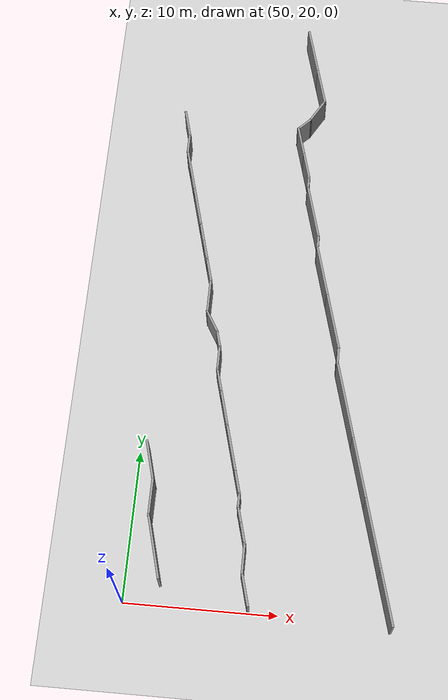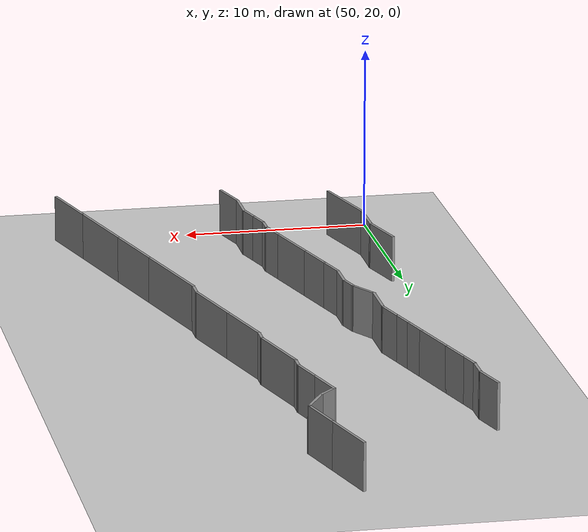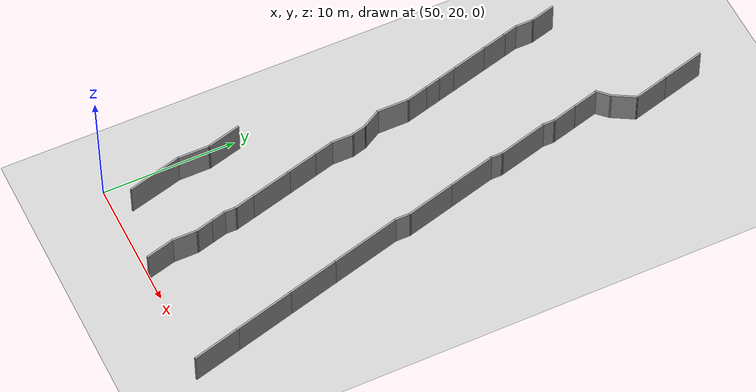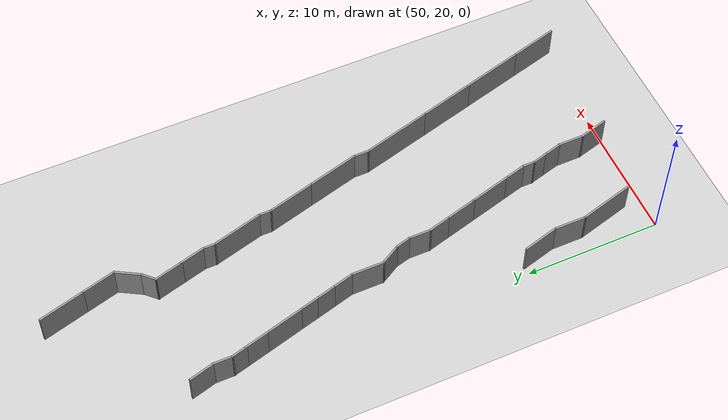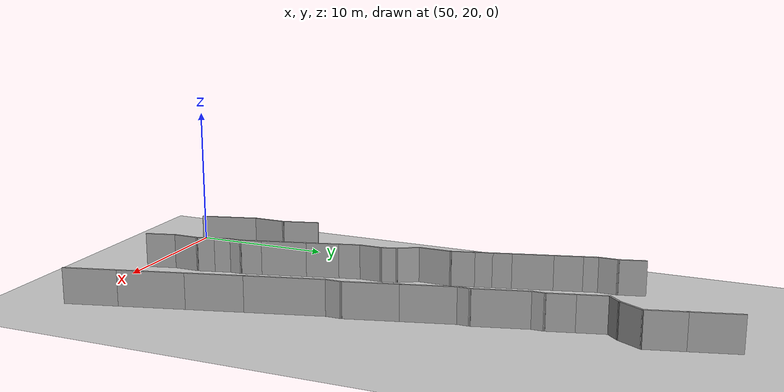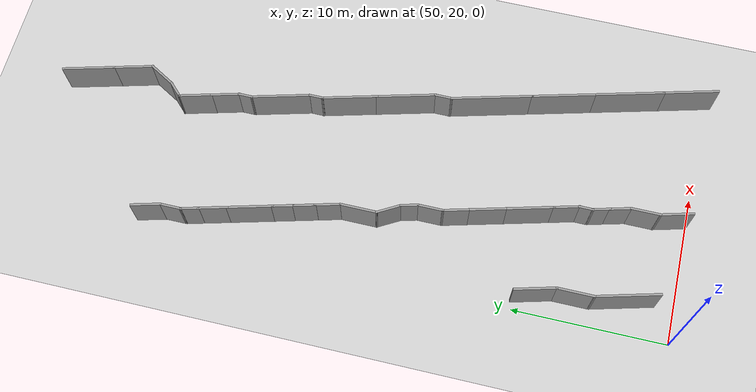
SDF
<sdf version="1.7">
 <world name="default">
  <model name="ground_plane">
   <static>1</static>
   <link name="link">
    <collision name="collision">
     <geometry><plane><normal>0 0 1</normal><size>500 500</size></plane></geometry>
     <surface><friction><ode><mu>100</mu><mu2>50</mu2></ode></friction></surface>
    </collision>
    <visual name="visual">
     <cast_shadows>0</cast_shadows>
     <geometry><plane><normal>0 0 1</normal><size>500 500</size></plane></geometry>
     <material>
      <script><uri>file://media/materials/scripts/gazebo.material</uri><name>Gazebo/Grey</name></script>
     </material>
    </visual>
   </link>
  </model>
  <model name="out_door1">
   <pose>25.5832 12.3476 0 0 -0 0</pose>
   <link name="Wall_141">
    <collision name="Wall_141_Collision">
     <geometry><box><size>3.75 0.15 2.5</size></box></geometry>
     <pose>0 0 1.25 0 -0 0</pose>
    </collision>
    <visual name="Wall_141_Visual">
     <pose>0 0 1.25 0 -0 0</pose>
     <geometry><box><size>3.75 0.15 2.5</size></box></geometry>
     <material>
      <script><uri>file://media/materials/scripts/gazebo.material</uri><name>Gazebo/Grey</name></script>
      <ambient>1 1 1 1</ambient>
     </material>
     <meta><layer>0</layer></meta>
    </visual>
    <pose>41.0779 8.96221 0 0 -0 1.8326</pose>
   </link>
   <link name="Wall_142">
    <collision name="Wall_142_Collision">
     <geometry><box><size>4.75 0.15 2.5</size></box></geometry>
     <pose>0 0 1.25 0 -0 0</pose>
    </collision>
    <visual name="Wall_142_Visual">
     <pose>0 0 1.25 0 -0 0</pose>
     <geometry><box><size>4.75 0.15 2.5</size></box></geometry>
     <material>
      <script><uri>file://media/materials/scripts/gazebo.material</uri><name>Gazebo/Grey</name></script>
      <ambient>1 1 1 1</ambient>
     </material>
     <meta><layer>0</layer></meta>
    </visual>
    <pose>40.0167 12.9225 0 0 -0 1.8326</pose>
   </link>
   <link name="Wall_143">
    <collision name="Wall_143_Collision">
     <geometry><box><size>4.25 0.15 2.5</size></box></geometry>
     <pose>0 0 1.25 0 -0 0</pose>
    </collision>
    <visual name="Wall_143_Visual">
     <pose>0 0 1.25 0 -0 0</pose>
     <geometry><box><size>4.25 0.15 2.5</size></box></geometry>
     <material>
      <script><uri>file://media/materials/scripts/gazebo.material</uri><name>Gazebo/Grey</name></script>
      <ambient>1 1 1 1</ambient>
     </material>
     <meta><layer>0</layer></meta>
    </visual>
    <pose>38.8908 17.1243 0 0 -0 1.8326</pose>
   </link>
   <link name="Wall_145">
    <collision name="Wall_145_Collision">
     <geometry><box><size>5.5 0.15 2.5</size></box></geometry>
     <pose>0 0 1.25 0 -0 0</pose>
    </collision>
    <visual name="Wall_145_Visual">
     <pose>0 0 1.25 0 -0 0</pose>
     <geometry><box><size>5.5 0.15 2.5</size></box></geometry>
     <material>
      <script><uri>file://media/materials/scripts/gazebo.material</uri><name>Gazebo/Grey</name></script>
      <ambient>1 1 1 1</ambient>
     </material>
     <meta><layer>0</layer></meta>
    </visual>
    <pose>37.6679 21.6883 0 0 -0 1.8326</pose>
   </link>
   <link name="Wall_146">
    <collision name="Wall_146_Collision">
     <geometry><box><size>1.25 0.15 2.5</size></box></geometry>
     <pose>0 0 1.25 0 -0 0</pose>
    </collision>
    <visual name="Wall_146_Visual">
     <pose>0 0 1.25 0 -0 0</pose>
     <geometry><box><size>1.25 0.15 2.5</size></box></geometry>
     <material>
      <script><uri>file://media/materials/scripts/gazebo.material</uri><name>Gazebo/Grey</name></script>
      <ambient>1 1 1 1</ambient>
     </material>
     <meta><layer>0</layer></meta>
    </visual>
    <pose>36.9756 24.8221 0 0 -0 1.5708</pose>
   </link>
   <link name="Wall_147">
    <collision name="Wall_147_Collision">
     <geometry><box><size>4 0.15 2.5</size></box></geometry>
     <pose>0 0 1.25 0 -0 0</pose>
    </collision>
    <visual name="Wall_147_Visual">
     <pose>0 0 1.25 0 -0 0</pose>
     <geometry><box><size>4 0.15 2.5</size></box></geometry>
     <material>
      <script><uri>file://media/materials/scripts/gazebo.material</uri><name>Gazebo/Grey</name></script>
      <ambient>1 1 1 1</ambient>
     </material>
     <meta><layer>0</layer></meta>
    </visual>
    <pose>36.4773 27.2315 0 0 -0 1.8326</pose>
   </link>
   <link name="Wall_148">
    <collision name="Wall_148_Collision">
     <geometry><box><size>3.75 0.15 2.5</size></box></geometry>
     <pose>0 0 1.25 0 -0 0</pose>
    </collision>
    <visual name="Wall_148_Visual">
     <pose>0 0 1.25 0 -0 0</pose>
     <geometry><box><size>3.75 0.15 2.5</size></box></geometry>
     <material>
      <script><uri>file://media/materials/scripts/gazebo.material</uri><name>Gazebo/Grey</name></script>
      <ambient>1 1 1 1</ambient>
     </material>
     <meta><layer>0</layer></meta>
    </visual>
    <pose>35.5132 30.8296 0 0 -0 1.8326</pose>
   </link>
   <link name="Wall_149">
    <collision name="Wall_149_Collision">
     <geometry><box><size>1 0.15 2.5</size></box></geometry>
     <pose>0 0 1.25 0 -0 0</pose>
    </collision>
    <visual name="Wall_149_Visual">
     <pose>0 0 1.25 0 -0 0</pose>
     <geometry><box><size>1 0.15 2.5</size></box></geometry>
     <material>
      <script><uri>file://media/materials/scripts/gazebo.material</uri><name>Gazebo/Grey</name></script>
      <ambient>1 1 1 1</ambient>
     </material>
     <meta><layer>0</layer></meta>
    </visual>
    <pose>35.0474 32.9933 0 0 -0 1.5708</pose>
   </link>
   <link name="Wall_150">
    <collision name="Wall_150_Collision">
     <geometry><box><size>4 0.15 2.5</size></box></geometry>
     <pose>0 0 1.25 0 -0 0</pose>
    </collision>
    <visual name="Wall_150_Visual">
     <pose>0 0 1.25 0 -0 0</pose>
     <geometry><box><size>4 0.15 2.5</size></box></geometry>
     <material>
      <script><uri>file://media/materials/scripts/gazebo.material</uri><name>Gazebo/Grey</name></script>
      <ambient>1 1 1 1</ambient>
     </material>
     <meta><layer>0</layer></meta>
    </visual>
    <pose>34.5491 35.2777 0 0 -0 1.8326</pose>
   </link>
   <link name="Wall_152">
    <collision name="Wall_152_Collision">
     <geometry><box><size>1 0.15 2.5</size></box></geometry>
     <pose>0 0 1.25 0 -0 0</pose>
    </collision>
    <visual name="Wall_152_Visual">
     <pose>0 0 1.25 0 -0 0</pose>
     <geometry><box><size>1 0.15 2.5</size></box></geometry>
     <material>
      <script><uri>file://media/materials/scripts/gazebo.material</uri><name>Gazebo/Grey</name></script>
      <ambient>1 1 1 1</ambient>
     </material>
     <meta><layer>0</layer></meta>
    </visual>
    <pose>34.0509 37.5621 0 0 -0 1.5708</pose>
   </link>
   <link name="Wall_153">
    <collision name="Wall_153_Collision">
     <geometry><box><size>2 0.15 2.5</size></box></geometry>
     <pose>0 0 1.25 0 -0 0</pose>
    </collision>
    <visual name="Wall_153_Visual">
     <pose>0 0 1.25 0 -0 0</pose>
     <geometry><box><size>2 0.15 2.5</size></box></geometry>
     <material>
      <script><uri>file://media/materials/scripts/gazebo.material</uri><name>Gazebo/Grey</name></script>
      <ambient>1 1 1 1</ambient>
     </material>
     <meta><layer>0</layer></meta>
    </visual>
    <pose>33.8115 38.8806 0 0 -0 1.8326</pose>
   </link>
   <link name="Wall_154">
    <collision name="Wall_154_Collision">
     <geometry><box><size>2.25 0.15 2.5</size></box></geometry>
     <pose>0 0 1.25 0 -0 0</pose>
    </collision>
    <visual name="Wall_154_Visual">
     <pose>0 0 1.25 0 -0 0</pose>
     <geometry><box><size>2.25 0.15 2.5</size></box></geometry>
     <material>
      <script><uri>file://media/materials/scripts/gazebo.material</uri><name>Gazebo/Grey</name></script>
      <ambient>1 1 1 1</ambient>
     </material>
     <meta><layer>0</layer></meta>
    </visual>
    <pose>33.3003 40.7883 0 0 -0 1.8326</pose>
   </link>
   <link name="Wall_155">
    <collision name="Wall_155_Collision">
     <geometry><box><size>1.25 0.15 2.5</size></box></geometry>
     <pose>0 0 1.25 0 -0 0</pose>
    </collision>
    <visual name="Wall_155_Visual">
     <pose>0 0 1.25 0 -0 0</pose>
     <geometry><box><size>1.25 0.15 2.5</size></box></geometry>
     <material>
      <script><uri>file://media/materials/scripts/gazebo.material</uri><name>Gazebo/Grey</name></script>
      <ambient>1 1 1 1</ambient>
     </material>
     <meta><layer>0</layer></meta>
    </visual>
    <pose>33.4175 42.1914 0 0 -0 0.785398</pose>
   </link>
   <link name="Wall_156">
    <collision name="Wall_156_Collision">
     <geometry><box><size>2 0.15 2.5</size></box></geometry>
     <pose>0 0 1.25 0 -0 0</pose>
    </collision>
    <visual name="Wall_156_Visual">
     <pose>0 0 1.25 0 -0 0</pose>
     <geometry><box><size>2 0.15 2.5</size></box></geometry>
     <material>
      <script><uri>file://media/materials/scripts/gazebo.material</uri><name>Gazebo/Grey</name></script>
      <ambient>1 1 1 1</ambient>
     </material>
     <meta><layer>0</layer></meta>
    </visual>
    <pose>34.2689 43.3814 0 0 -0 1.0472</pose>
   </link>
   <link name="Wall_157">
    <collision name="Wall_157_Collision">
     <geometry><box><size>2.75 0.15 2.5</size></box></geometry>
     <pose>0 0 1.25 0 -0 0</pose>
    </collision>
    <visual name="Wall_157_Visual">
     <pose>0 0 1.25 0 -0 0</pose>
     <geometry><box><size>2.75 0.15 2.5</size></box></geometry>
     <material>
      <script><uri>file://media/materials/scripts/gazebo.material</uri><name>Gazebo/Grey</name></script>
      <ambient>1 1 1 1</ambient>
     </material>
     <meta><layer>0</layer></meta>
    </visual>
    <pose>34.3949 45.4382 0 0 -0 1.8326</pose>
   </link>
   <link name="Wall_158">
    <collision name="Wall_158_Collision">
     <geometry><box><size>3.5 0.15 2.5</size></box></geometry>
     <pose>0 0 1.25 0 -0 0</pose>
    </collision>
    <visual name="Wall_158_Visual">
     <pose>0 0 1.25 0 -0 0</pose>
     <geometry><box><size>3.5 0.15 2.5</size></box></geometry>
     <material>
      <script><uri>file://media/materials/scripts/gazebo.material</uri><name>Gazebo/Grey</name></script>
      <ambient>1 1 1 1</ambient>
     </material>
     <meta><layer>0</layer></meta>
    </visual>
    <pose>33.6249 48.3118 0 0 -0 1.8326</pose>
   </link>
   <link name="Wall_331">
    <collision name="Wall_331_Collision">
     <geometry><box><size>2 0.15 2.5</size></box></geometry>
     <pose>0 0 1.25 0 -0 0</pose>
    </collision>
    <visual name="Wall_331_Visual">
     <pose>0 0 1.25 0 -0 0</pose>
     <geometry><box><size>2 0.15 2.5</size></box></geometry>
     <material>
      <script><uri>file://media/materials/scripts/gazebo.material</uri><name>Gazebo/Grey</name></script>
      <ambient>1 1 1 1</ambient>
     </material>
     <meta><layer>0</layer></meta>
    </visual>
    <pose>25.1226 41.5432 0 0 -0 -1.309</pose>
   </link>
   <link name="Wall_332">
    <collision name="Wall_332_Collision">
     <geometry><box><size>1.5 0.15 2.5</size></box></geometry>
     <pose>0 0 1.25 0 -0 0</pose>
    </collision>
    <visual name="Wall_332_Visual">
     <pose>0 0 1.25 0 -0 0</pose>
     <geometry><box><size>1.5 0.15 2.5</size></box></geometry>
     <material>
      <script><uri>file://media/materials/scripts/gazebo.material</uri><name>Gazebo/Grey</name></script>
      <ambient>1 1 1 1</ambient>
     </material>
     <meta><layer>0</layer></meta>
    </visual>
    <pose>25.362 39.9747 0 0 -0 -1.5708</pose>
   </link>
   <link name="Wall_333">
    <collision name="Wall_333_Collision">
     <geometry><box><size>1.25 0.15 2.5</size></box></geometry>
     <pose>0 0 1.25 0 -0 0</pose>
    </collision>
    <visual name="Wall_333_Visual">
     <pose>0 0 1.25 0 -0 0</pose>
     <geometry><box><size>1.25 0.15 2.5</size></box></geometry>
     <material>
      <script><uri>file://media/materials/scripts/gazebo.material</uri><name>Gazebo/Grey</name></script>
      <ambient>1 1 1 1</ambient>
     </material>
     <meta><layer>0</layer></meta>
    </visual>
    <pose>25.5043 38.7685 0 0 -0 -1.309</pose>
   </link>
   <link name="Wall_334">
    <collision name="Wall_334_Collision">
     <geometry><box><size>2 0.15 2.5</size></box></geometry>
     <pose>0 0 1.25 0 -0 0</pose>
    </collision>
    <visual name="Wall_334_Visual">
     <pose>0 0 1.25 0 -0 0</pose>
     <geometry><box><size>2 0.15 2.5</size></box></geometry>
     <material>
      <script><uri>file://media/materials/scripts/gazebo.material</uri><name>Gazebo/Grey</name></script>
      <ambient>1 1 1 1</ambient>
     </material>
     <meta><layer>0</layer></meta>
    </visual>
    <pose>25.8861 37.3437 0 0 -0 -1.309</pose>
   </link>
   <link name="Wall_335">
    <collision name="Wall_335_Collision">
     <geometry><box><size>3 0.15 2.5</size></box></geometry>
     <pose>0 0 1.25 0 -0 0</pose>
    </collision>
    <visual name="Wall_335_Visual">
     <pose>0 0 1.25 0 -0 0</pose>
     <geometry><box><size>3 0.15 2.5</size></box></geometry>
     <material>
      <script><uri>file://media/materials/scripts/gazebo.material</uri><name>Gazebo/Grey</name></script>
      <ambient>1 1 1 1</ambient>
     </material>
     <meta><layer>0</layer></meta>
    </visual>
    <pose>26.4943 35.0738 0 0 -0 -1.309</pose>
   </link>
   <link name="Wall_336">
    <collision name="Wall_336_Collision">
     <geometry><box><size>1.5 0.15 2.5</size></box></geometry>
     <pose>0 0 1.25 0 -0 0</pose>
    </collision>
    <visual name="Wall_336_Visual">
     <pose>0 0 1.25 0 -0 0</pose>
     <geometry><box><size>1.5 0.15 2.5</size></box></geometry>
     <material>
      <script><uri>file://media/materials/scripts/gazebo.material</uri><name>Gazebo/Grey</name></script>
      <ambient>1 1 1 1</ambient>
     </material>
     <meta><layer>0</layer></meta>
    </visual>
    <pose>27.0378 33.0453 0 0 -0 -1.309</pose>
   </link>
   <link name="Wall_338">
    <collision name="Wall_338_Collision">
     <geometry><box><size>1.5 0.15 2.5</size></box></geometry>
     <pose>0 0 1.25 0 -0 0</pose>
    </collision>
    <visual name="Wall_338_Visual">
     <pose>0 0 1.25 0 -0 0</pose>
     <geometry><box><size>1.5 0.15 2.5</size></box></geometry>
     <material>
      <script><uri>file://media/materials/scripts/gazebo.material</uri><name>Gazebo/Grey</name></script>
      <ambient>1 1 1 1</ambient>
     </material>
     <meta><layer>0</layer></meta>
    </visual>
    <pose>27.3872 31.7413 0 0 -0 -1.309</pose>
   </link>
   <link name="Wall_339">
    <collision name="Wall_339_Collision">
     <geometry><box><size>1.75 0.15 2.5</size></box></geometry>
     <pose>0 0 1.25 0 -0 0</pose>
    </collision>
    <visual name="Wall_339_Visual">
     <pose>0 0 1.25 0 -0 0</pose>
     <geometry><box><size>1.75 0.15 2.5</size></box></geometry>
     <material>
      <script><uri>file://media/materials/scripts/gazebo.material</uri><name>Gazebo/Grey</name></script>
      <ambient>1 1 1 1</ambient>
     </material>
     <meta><layer>0</layer></meta>
    </visual>
    <pose>27.769 30.3166 0 0 -0 -1.309</pose>
   </link>
   <link name="Wall_340">
    <collision name="Wall_340_Collision">
     <geometry><box><size>2.5 0.15 2.5</size></box></geometry>
     <pose>0 0 1.25 0 -0 0</pose>
    </collision>
    <visual name="Wall_340_Visual">
     <pose>0 0 1.25 0 -0 0</pose>
     <geometry><box><size>2.5 0.15 2.5</size></box></geometry>
     <material>
      <script><uri>file://media/materials/scripts/gazebo.material</uri><name>Gazebo/Grey</name></script>
      <ambient>1 1 1 1</ambient>
     </material>
     <meta><layer>0</layer></meta>
    </visual>
    <pose>27.9761 28.3689 0 0 -0 -1.5708</pose>
   </link>
   <link name="Wall_341">
    <collision name="Wall_341_Collision">
     <geometry><box><size>1.75 0.15 2.5</size></box></geometry>
     <pose>0 0 1.25 0 -0 0</pose>
    </collision>
    <visual name="Wall_341_Visual">
     <pose>0 0 1.25 0 -0 0</pose>
     <geometry><box><size>1.75 0.15 2.5</size></box></geometry>
     <material>
      <script><uri>file://media/materials/scripts/gazebo.material</uri><name>Gazebo/Grey</name></script>
      <ambient>1 1 1 1</ambient>
     </material>
     <meta><layer>0</layer></meta>
    </visual>
    <pose>28.3761 26.501 0 0 -0 -1.0472</pose>
   </link>
   <link name="Wall_342">
    <collision name="Wall_342_Collision">
     <geometry><box><size>1.25 0.15 2.5</size></box></geometry>
     <pose>0 0 1.25 0 -0 0</pose>
    </collision>
    <visual name="Wall_342_Visual">
     <pose>0 0 1.25 0 -0 0</pose>
     <geometry><box><size>1.25 0.15 2.5</size></box></geometry>
     <material>
      <script><uri>file://media/materials/scripts/gazebo.material</uri><name>Gazebo/Grey</name></script>
      <ambient>1 1 1 1</ambient>
     </material>
     <meta><layer>0</layer></meta>
    </visual>
    <pose>28.9184 25.277 0 0 -0 -1.309</pose>
   </link>
   <link name="Wall_343">
    <collision name="Wall_343_Collision">
     <geometry><box><size>1.75 0.15 2.5</size></box></geometry>
     <pose>0 0 1.25 0 -0 0</pose>
    </collision>
    <visual name="Wall_343_Visual">
     <pose>0 0 1.25 0 -0 0</pose>
     <geometry><box><size>1.75 0.15 2.5</size></box></geometry>
     <material>
      <script><uri>file://media/materials/scripts/gazebo.material</uri><name>Gazebo/Grey</name></script>
      <ambient>1 1 1 1</ambient>
     </material>
     <meta><layer>0</layer></meta>
    </visual>
    <pose>29.0608 23.9457 0 0 -0 -1.5708</pose>
   </link>
   <link name="Wall_344">
    <collision name="Wall_344_Collision">
     <geometry><box><size>1.75 0.15 2.5</size></box></geometry>
     <pose>0 0 1.25 0 -0 0</pose>
    </collision>
    <visual name="Wall_344_Visual">
     <pose>0 0 1.25 0 -0 0</pose>
     <geometry><box><size>1.75 0.15 2.5</size></box></geometry>
     <material>
      <script><uri>file://media/materials/scripts/gazebo.material</uri><name>Gazebo/Grey</name></script>
      <ambient>1 1 1 1</ambient>
     </material>
     <meta><layer>0</layer></meta>
    </visual>
    <pose>29.2678 22.373 0 0 -0 -1.309</pose>
   </link>
   <link name="Wall_346">
    <collision name="Wall_346_Collision">
     <geometry><box><size>2.5 0.15 2.5</size></box></geometry>
     <pose>0 0 1.25 0 -0 0</pose>
    </collision>
    <visual name="Wall_346_Visual">
     <pose>0 0 1.25 0 -0 0</pose>
     <geometry><box><size>2.5 0.15 2.5</size></box></geometry>
     <material>
      <script><uri>file://media/materials/scripts/gazebo.material</uri><name>Gazebo/Grey</name></script>
      <ambient>1 1 1 1</ambient>
     </material>
     <meta><layer>0</layer></meta>
    </visual>
    <pose>29.779 20.4653 0 0 -0 -1.309</pose>
   </link>
   <link name="Wall_347">
    <collision name="Wall_347_Collision">
     <geometry><box><size>3.25 0.15 2.5</size></box></geometry>
     <pose>0 0 1.25 0 -0 0</pose>
    </collision>
    <visual name="Wall_347_Visual">
     <pose>0 0 1.25 0 -0 0</pose>
     <geometry><box><size>3.25 0.15 2.5</size></box></geometry>
     <material>
      <script><uri>file://media/materials/scripts/gazebo.material</uri><name>Gazebo/Grey</name></script>
      <ambient>1 1 1 1</ambient>
     </material>
     <meta><layer>0</layer></meta>
    </visual>
    <pose>30.4843 17.8331 0 0 -0 -1.309</pose>
   </link>
   <link name="Wall_348">
    <collision name="Wall_348_Collision">
     <geometry><box><size>1.75 0.15 2.5</size></box></geometry>
     <pose>0 0 1.25 0 -0 0</pose>
    </collision>
    <visual name="Wall_348_Visual">
     <pose>0 0 1.25 0 -0 0</pose>
     <geometry><box><size>1.75 0.15 2.5</size></box></geometry>
     <material>
      <script><uri>file://media/materials/scripts/gazebo.material</uri><name>Gazebo/Grey</name></script>
      <ambient>1 1 1 1</ambient>
     </material>
     <meta><layer>0</layer></meta>
    </visual>
    <pose>31.0925 15.5632 0 0 -0 -1.309</pose>
   </link>
   <link name="Wall_349">
    <collision name="Wall_349_Collision">
     <geometry><box><size>1 0.15 2.5</size></box></geometry>
     <pose>0 0 1.25 0 -0 0</pose>
    </collision>
    <visual name="Wall_349_Visual">
     <pose>0 0 1.25 0 -0 0</pose>
     <geometry><box><size>1 0.15 2.5</size></box></geometry>
     <material>
      <script><uri>file://media/materials/scripts/gazebo.material</uri><name>Gazebo/Grey</name></script>
      <ambient>1 1 1 1</ambient>
     </material>
     <meta><layer>0</layer></meta>
    </visual>
    <pose>31.2995 14.3654 0 0 -0 -1.5708</pose>
   </link>
   <link name="Wall_350">
    <collision name="Wall_350_Collision">
     <geometry><box><size>1.25 0.15 2.5</size></box></geometry>
     <pose>0 0 1.25 0 -0 0</pose>
    </collision>
    <visual name="Wall_350_Visual">
     <pose>0 0 1.25 0 -0 0</pose>
     <geometry><box><size>1.25 0.15 2.5</size></box></geometry>
     <material>
      <script><uri>file://media/materials/scripts/gazebo.material</uri><name>Gazebo/Grey</name></script>
      <ambient>1 1 1 1</ambient>
     </material>
     <meta><layer>0</layer></meta>
    </visual>
    <pose>31.4419 13.4092 0 0 -0 -1.309</pose>
   </link>
   <link name="Wall_352">
    <collision name="Wall_352_Collision">
     <geometry><box><size>1.5 0.15 2.5</size></box></geometry>
     <pose>0 0 1.25 0 -0 0</pose>
    </collision>
    <visual name="Wall_352_Visual">
     <pose>0 0 1.25 0 -0 0</pose>
     <geometry><box><size>1.5 0.15 2.5</size></box></geometry>
     <material>
      <script><uri>file://media/materials/scripts/gazebo.material</uri><name>Gazebo/Grey</name></script>
      <ambient>1 1 1 1</ambient>
     </material>
     <meta><layer>0</layer></meta>
    </visual>
    <pose>31.7589 12.2259 0 0 -0 -1.309</pose>
   </link>
   <link name="Wall_353">
    <collision name="Wall_353_Collision">
     <geometry><box><size>2 0.15 2.5</size></box></geometry>
     <pose>0 0 1.25 0 -0 0</pose>
    </collision>
    <visual name="Wall_353_Visual">
     <pose>0 0 1.25 0 -0 0</pose>
     <geometry><box><size>2 0.15 2.5</size></box></geometry>
     <material>
      <script><uri>file://media/materials/scripts/gazebo.material</uri><name>Gazebo/Grey</name></script>
      <ambient>1 1 1 1</ambient>
     </material>
     <meta><layer>0</layer></meta>
    </visual>
    <pose>31.9336 10.6489 0 0 -0 -1.5708</pose>
   </link>
   <link name="Wall_354">
    <collision name="Wall_354_Collision">
     <geometry><box><size>2.25 0.15 2.5</size></box></geometry>
     <pose>0 0 1.25 0 -0 0</pose>
    </collision>
    <visual name="Wall_354_Visual">
     <pose>0 0 1.25 0 -0 0</pose>
     <geometry><box><size>2.25 0.15 2.5</size></box></geometry>
     <material>
      <script><uri>file://media/materials/scripts/gazebo.material</uri><name>Gazebo/Grey</name></script>
      <ambient>1 1 1 1</ambient>
     </material>
     <meta><layer>0</layer></meta>
    </visual>
    <pose>32.2054 8.7097 0 0 -0 -1.309</pose>
   </link>
   <link name="Wall_470">
    <collision name="Wall_470_Collision">
     <geometry><box><size>2.75 0.15 2.5</size></box></geometry>
     <pose>0 0 1.25 0 -0 0</pose>
    </collision>
    <visual name="Wall_470_Visual">
     <pose>0 0 1.25 0 -0 0</pose>
     <geometry><box><size>2.75 0.15 2.5</size></box></geometry>
     <material>
      <script><uri>file://media/materials/scripts/gazebo.material</uri><name>Gazebo/Grey</name></script>
      <ambient>1 1 1 1</ambient>
     </material>
     <meta><layer>0</layer></meta>
    </visual>
    <pose>25.3199 16.5196 0 0 -0 -1.309</pose>
   </link>
   <link name="Wall_471">
    <collision name="Wall_471_Collision">
     <geometry><box><size>2.5 0.15 2.5</size></box></geometry>
     <pose>0 0 1.25 0 -0 0</pose>
    </collision>
    <visual name="Wall_471_Visual">
     <pose>0 0 1.25 0 -0 0</pose>
     <geometry><box><size>2.5 0.15 2.5</size></box></geometry>
     <material>
      <script><uri>file://media/materials/scripts/gazebo.material</uri><name>Gazebo/Grey</name></script>
      <ambient>1 1 1 1</ambient>
     </material>
     <meta><layer>0</layer></meta>
    </visual>
    <pose>25.6564 14.0889 0 0 -0 -1.5708</pose>
   </link>
   <link name="Wall_472">
    <collision name="Wall_472_Collision">
     <geometry><box><size>4.25 0.15 2.5</size></box></geometry>
     <pose>0 0 1.25 0 -0 0</pose>
    </collision>
    <visual name="Wall_472_Visual">
     <pose>0 0 1.25 0 -0 0</pose>
     <geometry><box><size>4.25 0.15 2.5</size></box></geometry>
     <material>
      <script><uri>file://media/materials/scripts/gazebo.material</uri><name>Gazebo/Grey</name></script>
      <ambient>1 1 1 1</ambient>
     </material>
     <meta><layer>0</layer></meta>
    </visual>
    <pose>26.187 10.9337 0 0 -0 -1.309</pose>
   </link>
   <static>1</static>
  </model>
 </world>
</sdf>
